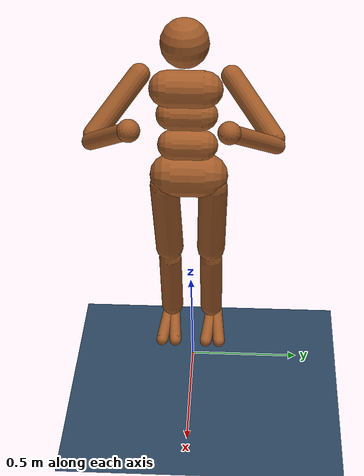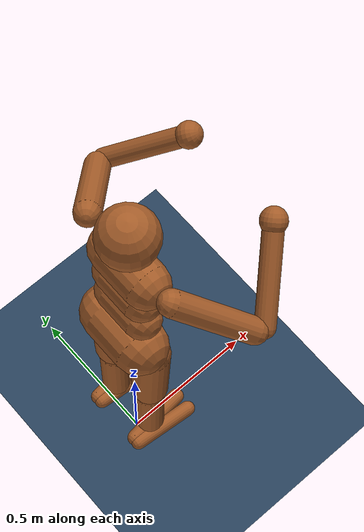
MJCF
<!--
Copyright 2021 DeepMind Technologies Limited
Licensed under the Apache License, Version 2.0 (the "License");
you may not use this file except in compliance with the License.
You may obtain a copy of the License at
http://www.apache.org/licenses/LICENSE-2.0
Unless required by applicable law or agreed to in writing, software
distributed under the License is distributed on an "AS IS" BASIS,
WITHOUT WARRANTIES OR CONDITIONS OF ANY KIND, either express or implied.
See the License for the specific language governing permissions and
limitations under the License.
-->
<mujoco model="Humanoid">
      <option timestep="0.005"/>

      <asset>
        <texture type="skybox" builtin="gradient" rgb1=".3 .5 .7" rgb2="0 0 0" width="512" height="512"/>
        <texture name="body" type="cube" builtin="flat" mark="cross" width="127" height="1278"
                 rgb1="0.8 0.6 0.4" rgb2="0.8 0.6 0.4" markrgb="1 1 1" random="0.01"/>
        <material name="body" texture="body" texuniform="true" rgba="0.8 0.6 .4 1"/>
        <texture name="grid" type="2d" builtin="checker" width="512" height="512" rgb1=".1 .2 .3" rgb2=".2 .3 .4"/>
        <material name="grid" texture="grid" texrepeat="1 1" texuniform="true" reflectance=".2"/>
      </asset>

      <default>
        <motor ctrlrange="-1 1" ctrllimited="true"/>
        <default class="body">
          <geom type="capsule" condim="1" friction=".7" solimp=".9 .99 .003" solref=".015 1" material="body"/>
          <joint type="hinge" damping=".2" stiffness="1" armature=".01" limited="true" solimplimit="0 .99 .01"/>
          <default class="big_joint">
            <joint damping="5" stiffness="10"/>
            <default class="big_stiff_joint">
              <joint stiffness="20"/>
            </default>
          </default>
        </default>
      </default>

      <visual>
        <map force="0.1" zfar="30"/>
        <rgba haze="0.15 0.25 0.35 1"/>
        <quality shadowsize="4096"/>
        <global offwidth="2000" offheight="2000" flipvertical="1"/>
      </visual>

      <worldbody>
        <geom name="floor" size="0 0 .05" type="plane" material="grid" condim="3"/>
        <light name="spotlight" mode="targetbodycom" target="torso"
               diffuse=".8 .8 .8" specular="0.3 0.3 0.3" pos="0 -20 4" cutoff="10"/>
        <body name="torso" pos="0 0 1.5" childclass="body">
          <light name="top" pos="0 0 2" mode="trackcom"/>
          <camera name="back" pos="-3 0 1" xyaxes="0 -1 0 1 0 2" mode="trackcom"/>
          <camera name="side" pos="0 -3 1" xyaxes="1 0 0 0 1 2" mode="trackcom"/>
          <freejoint name="root"/>
          <geom name="torso" fromto="0 -.07 0 0 .07 0" size=".07"/>
          <geom name="upper_waist" fromto="-.01 -.06 -.12 -.01 .06 -.12" size=".06"/>
          <body name="head" pos="0 0 .19">
            <geom name="head" type="sphere" size=".09"/>
            <camera name="egocentric" pos=".09 0 0" xyaxes="0 -1 0 .1 0 1" fovy="80"/>
          </body>
          <body name="lower_waist" pos="-.01 0 -.26">
            <geom name="lower_waist" fromto="0 -.06 0 0 .06 0" size=".06"/>
            <joint name="abdomen_z" pos="0 0 .065" axis="0 0 1" range="-45 45" class="big_stiff_joint"/>
            <joint name="abdomen_y" pos="0 0 .065" axis="0 1 0" range="-75 30" class="big_joint"/>
            <body name="pelvis" pos="0 0 -.165">
              <joint name="abdomen_x" pos="0 0 .1" axis="1 0 0" range="-35 35" class="big_joint"/>
              <geom name="butt" fromto="-.02 -.07 0 -.02 .07 0" size=".09"/>
              <body name="right_thigh" pos="0 -.1 -.04">
                <joint name="right_hip_x" axis="1 0 0" range="-25 5" class="big_joint"/>
                <joint name="right_hip_z" axis="0 0 1" range="-60 35" class="big_joint"/>
                <joint name="right_hip_y" axis="0 1 0" range="-110 20" class="big_stiff_joint"/>
                <geom name="right_thigh" fromto="0 0 0 0 .01 -.34" size=".06"/>
                <body name="right_shin" pos="0 .01 -.403">
                  <joint name="right_knee" pos="0 0 .02" axis="0 -1 0" range="-160 2"/>
                  <geom name="right_shin" fromto="0 0 0 0 0 -.3"  size=".049"/>
                  <body name="right_foot" pos="0 0 -.39">
                    <joint name="right_ankle_y" pos="0 0 .08" axis="0 1 0" range="-50 50" stiffness="6"/>
                    <joint name="right_ankle_x" pos="0 0 .04" axis="1 0 .5" range="-50 50" stiffness="3"/>
                    <geom name="right_right_foot" fromto="-.07 -.02 0 .14 -.04 0" size=".027"/>
                    <geom name="left_right_foot" fromto="-.07 0 0 .14  .02 0" size=".027"/>
                  </body>
                </body>
              </body>
              <body name="left_thigh" pos="0 .1 -.04">
                <joint name="left_hip_x" axis="-1 0 0" range="-25 5" class="big_joint"/>
                <joint name="left_hip_z" axis="0 0 -1" range="-60 35" class="big_joint"/>
                <joint name="left_hip_y" axis="0 1 0" range="-110 20" class="big_stiff_joint"/>
                <geom name="left_thigh" fromto="0 0 0 0 -.01 -.34" size=".06"/>
                <body name="left_shin" pos="0 -.01 -.403">
                  <joint name="left_knee" pos="0 0 .02" axis="0 -1 0" range="-160 2"/>
                  <geom name="left_shin" fromto="0 0 0 0 0 -.3"  size=".049"/>
                  <body name="left_foot" pos="0 0 -.39">
                    <joint name="left_ankle_y" pos="0 0 .08" axis="0 1 0" range="-50 50" stiffness="6"/>
                    <joint name="left_ankle_x" pos="0 0 .04" axis="1 0 .5" range="-50 50" stiffness="3"/>
                    <geom name="left_left_foot" fromto="-.07 .02 0 .14 .04 0" size=".027"/>
                    <geom name="right_left_foot" fromto="-.07 0 0 .14 -.02 0" size=".027"/>
                  </body>
                </body>
              </body>
            </body>
          </body>
          <body name="right_upper_arm" pos="0 -.17 .06">
            <joint name="right_shoulder1" axis="2 1 1"  range="-85 60"/>
            <joint name="right_shoulder2" axis="0 -1 1" range="-85 60"/>
            <geom name="right_upper_arm" fromto="0 0 0 .16 -.16 -.16" size=".04 .16"/>
            <body name="right_lower_arm" pos=".18 -.18 -.18">
              <joint name="right_elbow" axis="0 -1 1" range="-90 50" stiffness="0"/>
              <geom name="right_lower_arm" fromto=".01 .01 .01 .17 .17 .17" size=".031"/>
              <body name="right_hand" pos=".18 .18 .18">
                <geom name="right_hand" type="sphere" size=".04" zaxis="1 1 1"/>
              </body>
            </body>
          </body>
          <body name="left_upper_arm" pos="0 .17 .06">
            <joint name="left_shoulder1" axis="2 -1 1" range="-60 85"/>
            <joint name="left_shoulder2" axis="0 1 1"  range="-60 85"/>
            <geom name="left_upper_arm" fromto="0 0 0 .16 .16 -.16" size=".04 .16"/>
            <body name="left_lower_arm" pos=".18 .18 -.18">
              <joint name="left_elbow" axis="0 -1 -1" range="-90 50" stiffness="0"/>
              <geom name="left_lower_arm" fromto=".01 -.01 .01 .17 -.17 .17" size=".031"/>
              <body name="left_hand" pos=".18 -.18 .18">
                <geom name="left_hand" type="sphere" size=".04" zaxis="1 -1 1"/>
              </body>
            </body>
          </body>
        </body>
      </worldbody>

      <actuator>
        <motor name="abdomen_y"       gear="40"  joint="abdomen_y"/>
        <motor name="abdomen_z"       gear="40"  joint="abdomen_z"/>
        <motor name="abdomen_x"       gear="40"  joint="abdomen_x"/>
        <motor name="right_hip_x"     gear="40"  joint="right_hip_x"/>
        <motor name="right_hip_z"     gear="40"  joint="right_hip_z"/>
        <motor name="right_hip_y"     gear="120" joint="right_hip_y"/>
        <motor name="right_knee"      gear="80"  joint="right_knee"/>
        <motor name="right_ankle_x"   gear="20"  joint="right_ankle_x"/>
        <motor name="right_ankle_y"   gear="20"  joint="right_ankle_y"/>
        <motor name="left_hip_x"      gear="40"  joint="left_hip_x"/>
        <motor name="left_hip_z"      gear="40"  joint="left_hip_z"/>
        <motor name="left_hip_y"      gear="120" joint="left_hip_y"/>
        <motor name="left_knee"       gear="80"  joint="left_knee"/>
        <motor name="left_ankle_x"    gear="20"  joint="left_ankle_x"/>
        <motor name="left_ankle_y"    gear="20"  joint="left_ankle_y"/>
        <motor name="right_shoulder1" gear="20"  joint="right_shoulder1"/>
        <motor name="right_shoulder2" gear="20"  joint="right_shoulder2"/>
        <motor name="right_elbow"     gear="40"  joint="right_elbow"/>
        <motor name="left_shoulder1"  gear="20"  joint="left_shoulder1"/>
        <motor name="left_shoulder2"  gear="20"  joint="left_shoulder2"/>
        <motor name="left_elbow"      gear="40"  joint="left_elbow"/>
      </actuator>
    </mujoco>
